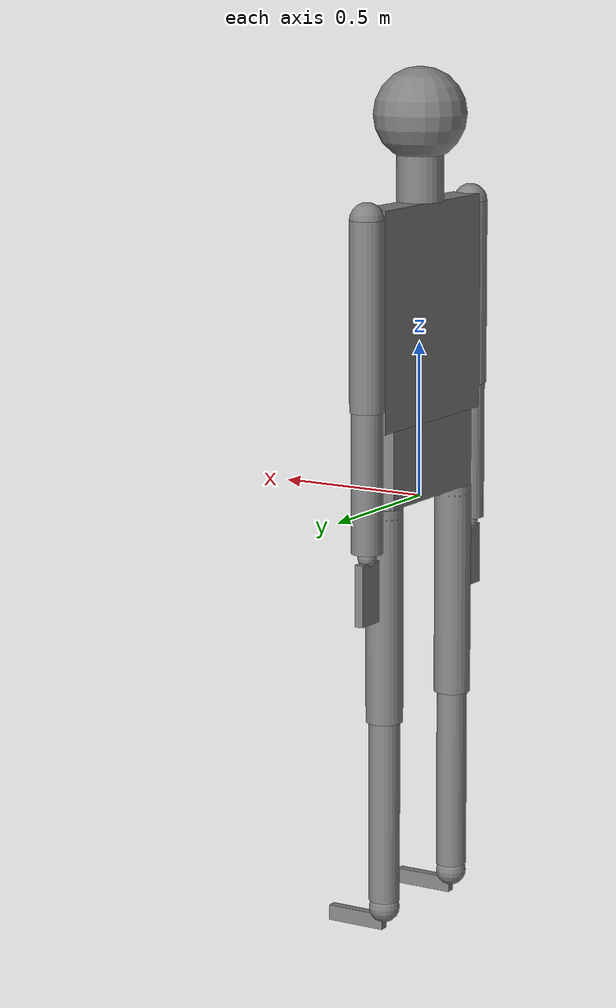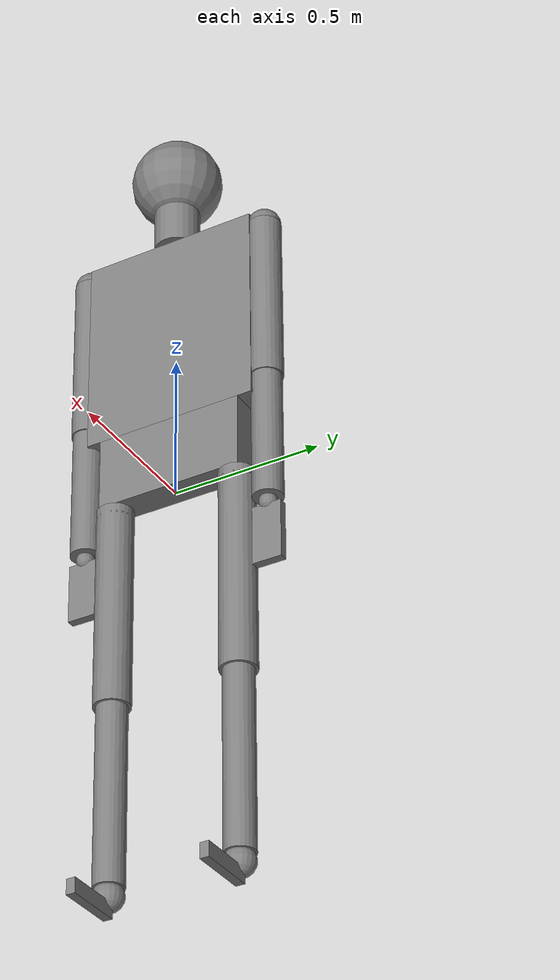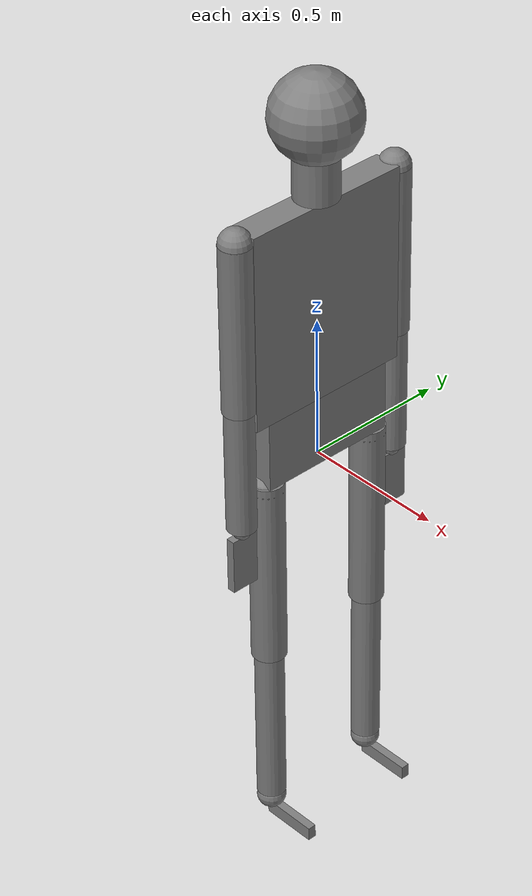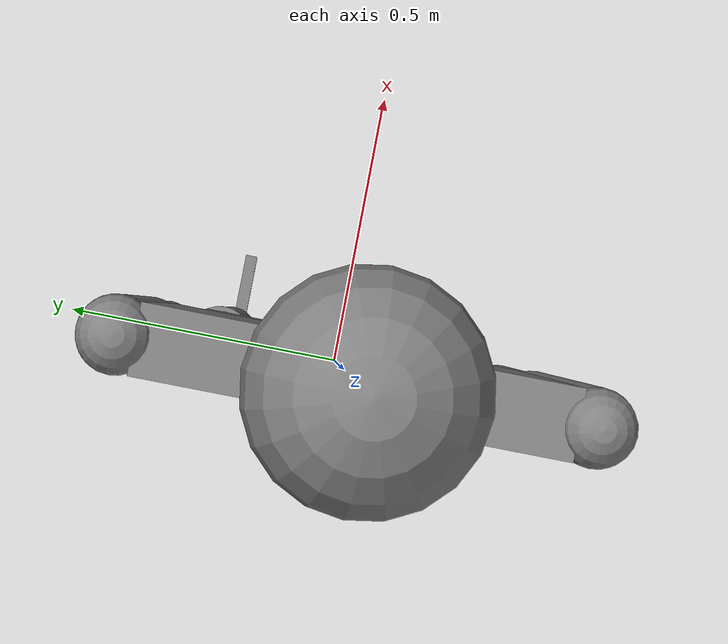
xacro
<robot name="ragdoll" xmlns:xacro="http://ros.org/wiki/xacro">

  <!-- hip is the root link -->

  <property name="M_PI" value="3.1415926535897931" />

  <property name="head_mass"           value="10.0" />
  <property name="neck_mass"           value="1.0" />
  <property name="torso_mass"          value="30.0" />
  <property name="hip_mass"            value="10.0" />
  <property name="thigh_pan_mass"      value="1.0" />
  <property name="thigh_lift_mass"     value="5.0" />
  <property name="calf_mass"           value="2.0" />
  <property name="ankle_mass"          value="1.0" />
  <property name="foot_mass"           value="1.0" />
  <property name="shoulder_mass"       value="1.0" />
  <property name="upper_arm_mass"      value="2.0" />
  <property name="forearm_mass"        value="1.0" />
  <property name="wrist_mass"          value="1.0" />
  <property name="hand_mass"           value="1.0" />

  <property name="head_radius"          value="0.15" />
  <property name="neck_radius"          value="0.075" />
  <property name="neck_length"          value="0.2" />
  <property name="torso_x"              value="0.10" />
  <property name="torso_y"              value="0.6" />
  <property name="torso_z"              value="0.7" />
  <property name="hip_x"                value="0.10" />
  <property name="hip_y"                value="0.5" />
  <property name="hip_z"                value="0.25" />

  <property name="thigh_pan_radius"     value="0.06" />
  <property name="thigh_lift_radius"    value="0.06" />
  <property name="thigh_lift_length"    value="0.70" />
  <property name="calf_radius"          value="0.05" />
  <property name="calf_length"          value="0.60" />
  <property name="ankle_radius"         value="0.05" />
  <property name="foot_x"               value="0.20" />
  <property name="foot_y"               value="0.03" />
  <property name="foot_z"               value="0.05" />

  <property name="shoulder_radius"      value="0.055" />
  <property name="upper_arm_radius"     value="0.055" />
  <property name="upper_arm_length"     value="0.60" />
  <property name="forearm_radius"       value="0.05" />
  <property name="forearm_length"       value="0.45" />
  <property name="wrist_radius"         value="0.03" />
  <property name="hand_x"               value="0.03" />
  <property name="hand_y"               value="0.10" />
  <property name="hand_z"               value="0.20" />

  <property name="upper_limit"          value="1.57" />
  <property name="lower_limit"          value="-1.57" />

  <link name="head">
    <inertial>
      <mass value="${head_mass}" />
      <origin xyz="0 0 0" />
      <inertia  ixx="${head_mass/100}" ixy="0" ixz="0" iyy="${head_mass/100}" iyz="0" izz="${head_mass/100}" />
    </inertial>
    <visual>
      <origin xyz="0 0 0" rpy="0 0 0" />
      <geometry>
        <sphere radius="${head_radius}"/>
      </geometry>
      <material name="head_color">
        <color rgba="0.5 0.5 0.5 1"/>
      </material>
    </visual>
    <collision>
      <origin xyz="0 0 0" rpy="0 0 0" />
      <geometry>
        <sphere radius="${head_radius}"/>
      </geometry>
    </collision>
  </link>
  <!-- remove -->
  <joint name="head_joint" type="revolute">
    <axis xyz="0 1 0"/>
    <limit lower="${lower_limit}" upper="${upper_limit}" effort="100" velocity="100"/>
    <origin xyz="0 0 ${neck_length+head_radius/2}" rpy="0 0 0"/>
    <parent link="neck"/>
    <child link="head"/>
  </joint>

  <link name="neck">
    <inertial>
      <mass value="${neck_mass}" />
      <origin xyz="0 0 0" />
      <inertia  ixx="${neck_mass/100}" ixy="0" ixz="0" iyy="${neck_mass/100}" iyz="0" izz="${neck_mass/100}" />
    </inertial>
    <visual>
      <origin xyz="0 0 ${neck_length/2}" rpy="0 0 0" />
      <geometry>
        <cylinder radius="${neck_radius}" length="${neck_length}"/>
      </geometry>
      <material name="neck_color">
        <color rgba="0.5 0.5 0.5 1"/>
      </material>
    </visual>
    <collision>
      <origin xyz="0 0 ${neck_length/2}" rpy="0 0 0" />
      <geometry>
        <cylinder radius="${neck_radius}" length="${neck_length}"/>
      </geometry>
    </collision>
  </link>
  <joint name="neck_joint" type="revolute">
    <axis xyz="0 0 1"/>
    <limit lower="${lower_limit}" upper="${upper_limit}" effort="100" velocity="100"/>
    <origin xyz="0 0 ${torso_z}" rpy="0 0 0"/>
    <parent link="torso"/>
    <child link="neck"/>
  </joint>

  <link name="torso">
    <inertial>
      <mass value="${torso_mass}" />
      <origin xyz="0 0 0" />
      <inertia  ixx="${torso_mass/100}" ixy="0" ixz="0" iyy="${torso_mass/100}" iyz="0" izz="${torso_mass/100}" />
    </inertial>
    <visual>
      <origin xyz="0 0 ${torso_z/2}" rpy="0 0 0" />
      <geometry>
        <box size="${torso_x} ${torso_y} ${torso_z}"/>
      </geometry>
      <material name="torso_color">
        <color rgba="0.5 0.5 0.5 1"/>
      </material>
    </visual>
    <collision>
      <origin xyz="0 0 ${torso_z/2}" rpy="0 0 0" />
      <geometry>
        <box size="${torso_x} ${torso_y} ${torso_z}"/>
      </geometry>
    </collision>
  </link>
  <joint name="torso_joint" type="revolute">
    <axis xyz="0 1 0"/>
    <limit lower="${lower_limit}" upper="${upper_limit}" effort="100" velocity="100"/>
    <origin xyz="0 0 ${hip_z}" rpy="0 0 0"/>
    <parent link="hip"/>
    <child link="torso"/>
  </joint>

  <link name="hip">
    <inertial>
      <mass value="${hip_mass}" />
      <origin xyz="0 0 0" />
      <inertia  ixx="${hip_mass/100}" ixy="0" ixz="0" iyy="${hip_mass/100}" iyz="0" izz="${hip_mass/100}" />
    </inertial>
    <visual>
      <origin xyz="0 0 ${hip_z/2}" rpy="0 0 0" />
      <geometry>
        <box size="${hip_x} ${hip_y} ${hip_z}"/>
      </geometry>
      <material name="hip_color">
        <color rgba="0.5 0.5 0.5 1"/>
      </material>
    </visual>
    <collision>
      <origin xyz="0 0 ${hip_z/2}" rpy="0 0 0" />
      <geometry>
        <box size="${hip_x} ${hip_y} ${hip_z}"/>
      </geometry>
    </collision>
  </link>

  <xacro:macro name="leg" params="side *origin">
    <link name="${side}_thigh_pan">
      <inertial>
        <mass value="${thigh_pan_mass}" />
        <origin xyz="0 0 0" />
        <inertia  ixx="${thigh_pan_mass/100}" ixy="0" ixz="0" iyy="${thigh_pan_mass/100}" iyz="0" izz="${thigh_pan_mass/100}" />
      </inertial>
      <visual>
        <origin xyz="0 0 ${-thigh_pan_radius/2}" rpy="0 0 0" />
        <geometry>
          <sphere radius="${thigh_pan_radius}"/>
        </geometry>
      <material name="${side}_thigh_pan_color">
        <color rgba="0.5 0.5 0.5 1"/>
      </material>
      </visual>
      <collision>
        <origin xyz="0 0 ${-thigh_pan_radius/2}" rpy="0 0 0" />
        <geometry>
          <sphere radius="${thigh_pan_radius}"/>
        </geometry>
      </collision>
    </link>
    <joint name="${side}_thigh_pan_joint" type="revolute">
      <axis xyz="0 0 1"/>
      <limit lower="${lower_limit}" upper="${upper_limit}" effort="100" velocity="100"/>
      <insert_block name="origin" />
      <parent link="hip"/>
      <child link="${side}_thigh_pan"/>
    </joint>

    <link name="${side}_thigh_lift">
      <inertial>
        <mass value="${thigh_lift_mass}" />
        <origin xyz="0 0 0" />
        <inertia  ixx="${thigh_lift_mass/100}" ixy="0" ixz="0" iyy="${thigh_lift_mass/100}" iyz="0" izz="${thigh_lift_mass/100}" />
      </inertial>
      <visual>
        <origin xyz="0 0 ${-thigh_lift_length/2}" rpy="0 0 0" />
        <geometry>
          <cylinder radius="${thigh_lift_radius}" length="${thigh_lift_length}"/>
        </geometry>
      <material name="${side}_thigh_lift_color">
        <color rgba="0.5 0.5 0.5 1"/>
      </material>
      </visual>
      <collision>
        <origin xyz="0 0 ${-thigh_lift_length/2}" rpy="0 0 0" />
        <geometry>
          <cylinder radius="${thigh_lift_radius}" length="${thigh_lift_length}"/>
        </geometry>
      </collision>
    </link>
    <joint name="${side}_thigh_lift_joint" type="revolute">
      <axis xyz="0 1 0"/>
      <limit lower="${lower_limit}" upper="${upper_limit}" effort="100" velocity="100"/>
      <origin xyz="0 0 0" rpy="0 0 0"/>
      <parent link="${side}_thigh_pan"/>
      <child link="${side}_thigh_lift"/>
    </joint>

    <link name="${side}_calf">
      <inertial>
        <mass value="${calf_mass}" />
        <origin xyz="0 0 0" />
        <inertia  ixx="${calf_mass/100}" ixy="0" ixz="0" iyy="${calf_mass/100}" iyz="0" izz="${calf_mass/100}" />
      </inertial>
      <visual>
        <origin xyz="0 0 ${-calf_length/2}" rpy="0 0 0" />
        <geometry>
          <cylinder radius="${calf_radius}" length="${calf_length}"/>
        </geometry>
      <material name="${side}_calf_color">
        <color rgba="0.5 0.5 0.5 1"/>
      </material>
      </visual>
      <collision>
        <origin xyz="0 0 ${-calf_length/2}" rpy="0 0 0" />
        <geometry>
          <cylinder radius="${calf_radius}" length="${calf_length}"/>
        </geometry>
      </collision>
    </link>
    <joint name="${side}_calf_joint" type="revolute">
      <axis xyz="0 1 0"/>
      <limit lower="${lower_limit}" upper="${upper_limit}" effort="100" velocity="100"/>
      <origin xyz="0 0 ${-thigh_lift_length}" rpy="0 0 0"/>
      <parent link="${side}_thigh_lift"/>
      <child link="${side}_calf"/>
    </joint>

    <link name="${side}_ankle">
      <inertial>
        <mass value="${ankle_mass}" />
        <origin xyz="0 0 0" />
        <inertia  ixx="${ankle_mass/100}" ixy="0" ixz="0" iyy="${ankle_mass/100}" iyz="0" izz="${ankle_mass/100}" />
      </inertial>
      <visual>
        <origin xyz="0 0 0" rpy="0 0 0" />
        <geometry>
          <sphere radius="${ankle_radius}"/>
        </geometry>
      <material name="${side}_ankle_color">
        <color rgba="0.5 0.5 0.5 1"/>
      </material>
      </visual>
      <collision>
        <origin xyz="0 0 0" rpy="0 0 0" />
        <geometry>
          <sphere radius="${ankle_radius}"/>
        </geometry>
      </collision>
    </link>
    <joint name="${side}_ankle_joint" type="revolute">
      <axis xyz="0 1 0"/>
      <limit lower="${lower_limit}" upper="${upper_limit}" effort="100" velocity="100"/>
      <origin xyz="0 0 ${-calf_length-ankle_radius/2}" rpy="0 0 0"/>
      <parent link="${side}_calf"/>
      <child link="${side}_ankle"/>
    </joint>

    <link name="${side}_foot">
      <inertial>
        <mass value="${foot_mass}" />
        <origin xyz="0 0 0" />
        <inertia  ixx="${foot_mass/100}" ixy="0" ixz="0" iyy="${foot_mass/100}" iyz="0" izz="${foot_mass/100}" />
      </inertial>
      <visual>
        <origin xyz="${foot_x/2} 0 ${-foot_z/2}" rpy="0 0 0" />
        <geometry>
          <box size="${foot_x} ${foot_y} ${foot_z}"/>
        </geometry>
      <material name="${side}_foot_color">
        <color rgba="0.5 0.5 0.5 1"/>
      </material>
      </visual>
      <collision>
        <origin xyz="${foot_x/2} 0 ${-foot_z/2}" rpy="0 0 0" />
        <geometry>
          <box size="${foot_x} ${foot_y} ${foot_z}"/>
        </geometry>
      </collision>
    </link>
    <joint name="${side}_foot_joint" type="revolute">
      <axis xyz="1 0 0"/>
      <limit lower="${lower_limit}" upper="${upper_limit}" effort="100" velocity="100"/>
      <origin xyz="0 0 ${-ankle_radius/2}" rpy="0 0 0"/>
      <parent link="${side}_ankle"/>
      <child link="${side}_foot"/>
    </joint>
  </xacro:macro>

  <xacro:macro name="arm" params="side *origin">
    <link name="${side}_shoulder">
      <inertial>
        <mass value="${shoulder_mass}" />
        <origin xyz="0 0 0" />
        <inertia  ixx="${shoulder_mass/100}" ixy="0" ixz="0" iyy="${shoulder_mass/100}" iyz="0" izz="${shoulder_mass/100}" />
      </inertial>
      <visual>
        <origin xyz="0 0 0" rpy="0 0 0" />
        <geometry>
          <sphere radius="${shoulder_radius}"/>
        </geometry>
      <material name="${side}_shoulder_color">
        <color rgba="0.5 0.5 0.5 1"/>
      </material>
      </visual>
      <collision>
        <origin xyz="0 0 0" rpy="0 0 0" />
        <geometry>
          <sphere radius="${shoulder_radius}"/>
        </geometry>
      </collision>
    </link>
    <joint name="${side}_shoulder_joint" type="revolute">
      <axis xyz="1 0 0"/>
      <limit lower="${lower_limit}" upper="${upper_limit}" effort="100" velocity="100"/>
      <insert_block name="origin" />
      <parent link="torso"/>
      <child link="${side}_shoulder"/>
    </joint>

    <link name="${side}_upper_arm">
      <inertial>
        <mass value="${upper_arm_mass}" />
        <origin xyz="0 0 0" />
        <inertia  ixx="${upper_arm_mass/100}" ixy="0" ixz="0" iyy="${upper_arm_mass/100}" iyz="0" izz="${upper_arm_mass/100}" />
      </inertial>
      <visual>
        <origin xyz="0 0 ${-upper_arm_length/2}" rpy="0 0 0" />
        <geometry>
          <cylinder radius="${upper_arm_radius}" length="${upper_arm_length}"/>
        </geometry>
      <material name="${side}_upper_arm_color">
        <color rgba="0.5 0.5 0.5 1"/>
      </material>
      </visual>
      <collision>
        <origin xyz="0 0 ${-upper_arm_length/2}" rpy="0 0 0" />
        <geometry>
          <cylinder radius="${upper_arm_radius}" length="${upper_arm_length}"/>
        </geometry>
      </collision>
    </link>
    <joint name="${side}_upper_arm_joint" type="revolute">
      <axis xyz="0 1 0"/>
      <limit lower="${lower_limit}" upper="${upper_limit}" effort="100" velocity="100"/>
      <origin xyz="0 0 0" rpy="0 0 0"/>
      <parent link="${side}_shoulder"/>
      <child link="${side}_upper_arm"/>
    </joint>

    <link name="${side}_forearm">
      <inertial>
        <mass value="${forearm_mass}" />
        <origin xyz="0 0 0" />
        <inertia  ixx="${forearm_mass/100}" ixy="0" ixz="0" iyy="${forearm_mass/100}" iyz="0" izz="${forearm_mass/100}" />
      </inertial>
      <visual>
        <origin xyz="0 0 ${-forearm_length/2}" rpy="0 0 0" />
        <geometry>
          <cylinder radius="${forearm_radius}" length="${forearm_length}"/>
        </geometry>
      <material name="${side}_forearm_color">
        <color rgba="0.5 0.5 0.5 1"/>
      </material>
      </visual>
      <collision>
        <origin xyz="0 0 ${-forearm_length/2}" rpy="0 0 0" />
        <geometry>
          <cylinder radius="${forearm_radius}" length="${forearm_length}"/>
        </geometry>
      </collision>
    </link>
    <joint name="${side}_forearm_joint" type="revolute">
      <axis xyz="0 1 0"/>
      <limit lower="${lower_limit}" upper="${upper_limit}" effort="100" velocity="100"/>
      <origin xyz="0 0 ${-upper_arm_length}" rpy="0 0 0"/>
      <parent link="${side}_upper_arm"/>
      <child link="${side}_forearm"/>
    </joint>

    <link name="${side}_wrist">
      <inertial>
        <mass value="${wrist_mass}" />
        <origin xyz="0 0 0" />
        <inertia  ixx="${wrist_mass/100}" ixy="0" ixz="0" iyy="${wrist_mass/100}" iyz="0" izz="${wrist_mass/100}" />
      </inertial>
      <visual>
        <origin xyz="0 0 0" rpy="0 0 0" />
        <geometry>
          <sphere radius="${wrist_radius}"/>
        </geometry>
      <material name="${side}_wrist_color">
        <color rgba="0.5 0.5 0.5 1"/>
      </material>
      </visual>
      <collision>
        <origin xyz="0 0 0" rpy="0 0 0" />
        <geometry>
          <sphere radius="${wrist_radius}"/>
        </geometry>
      </collision>
    </link>
    <joint name="${side}_wrist_joint" type="revolute">
      <axis xyz="0 1 0"/>
      <limit lower="${lower_limit}" upper="${upper_limit}" effort="100" velocity="100"/>
      <origin xyz="0 0 ${-forearm_length-wrist_radius/2}" rpy="0 0 0"/>
      <parent link="${side}_forearm"/>
      <child link="${side}_wrist"/>
    </joint>

    <link name="${side}_hand">
      <inertial>
        <mass value="${hand_mass}" />
        <origin xyz="0 0 0" />
        <inertia  ixx="${hand_mass/100}" ixy="0" ixz="0" iyy="${hand_mass/100}" iyz="0" izz="${hand_mass/100}" />
      </inertial>
      <visual>
        <origin xyz="0 0 ${-hand_z/2}" rpy="0 0 0" />
        <geometry>
          <box size="${hand_x} ${hand_y} ${hand_z}"/>
        </geometry>
      <material name="${side}_hand_color">
        <color rgba="0.5 0.5 0.5 1"/>
      </material>
      </visual>
      <collision>
        <origin xyz="0 0 ${-hand_z/2}" rpy="0 0 0" />
        <geometry>
          <box size="${hand_x} ${hand_y} ${hand_z}"/>
        </geometry>
      </collision>
    </link>
    <joint name="${side}_hand_joint" type="revolute">
      <axis xyz="0 1 0"/>
      <limit lower="${lower_limit}" upper="${upper_limit}" effort="100" velocity="100"/>
      <origin xyz="0 0 ${-wrist_radius/2}" rpy="0 0 0"/>
      <parent link="${side}_wrist"/>
      <child link="${side}_hand"/>
    </joint>
  </xacro:macro>

  <xacro:leg side="l">
      <origin xyz="0 ${hip_y/2-thigh_pan_radius/2} 0" rpy="0 0 0"/>
  </xacro:leg>
  <xacro:arm side="l">
    <origin xyz="0 ${torso_y/2+shoulder_radius/2} ${torso_z-shoulder_radius/2}" rpy="0 0 0"/>
  </xacro:arm>

  <xacro:leg side="r">
      <origin xyz="0 ${-hip_y/2+thigh_pan_radius/2} 0" rpy="0 0 0"/>
  </xacro:leg>
  <xacro:arm side="r">
    <origin xyz="0 ${-torso_y/2-shoulder_radius/2} ${torso_z-shoulder_radius/2}" rpy="0 0 0"/>
  </xacro:arm>

</robot>
